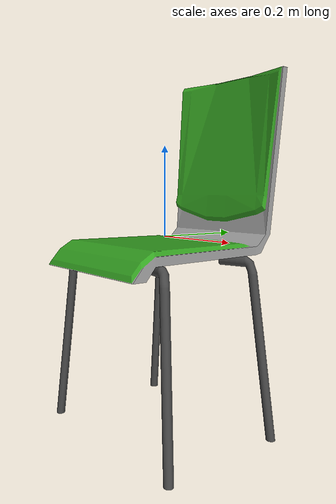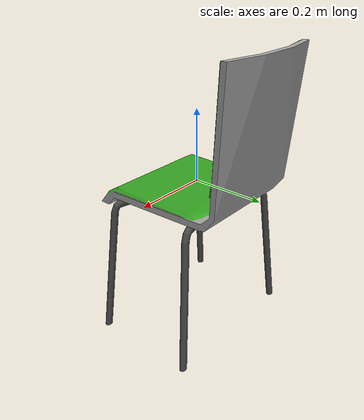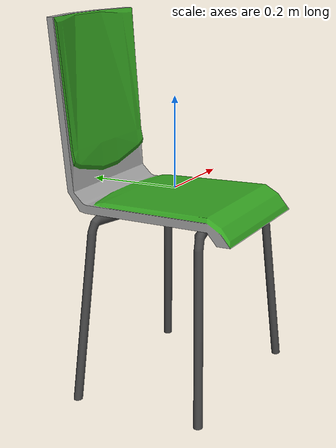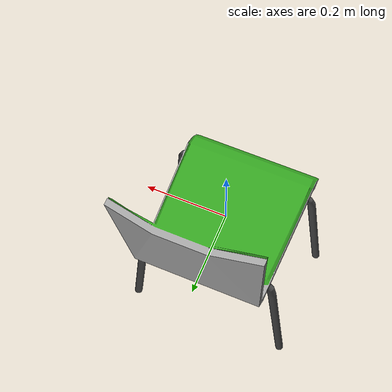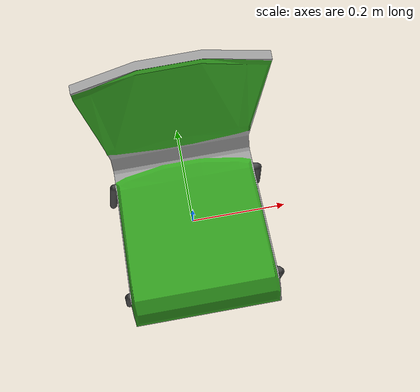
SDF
<?xml version='1.0'?>
<sdf version='1.5'>
    <model name="classroom_chair">
        <pose>0 0 0 0 0 0</pose>
        <static>false</static>
        <link name='model_body'>
            <visual name="visual">
                <geometry>
                    <mesh>
                        <uri>model://robert_gazebo/meshes/classroom_chair_green_visual.dae</uri>
                        <scale>100 100 100</scale>
                    </mesh>
                </geometry>
            </visual>

            <collision name="collision">
                <geometry>
                    <mesh>
                        <uri>model://robert_gazebo/meshes/classroom_chair_collision.dae</uri>
                        <scale>1 1 1</scale>
                    </mesh>
                </geometry>
            </collision>

            <inertial>
                <pose> 0 0 0 0 0 0</pose>
                <inertia>
                    <ixx>0.34</ixx>
                    <ixy>0</ixy>
                    <ixz>0</ixz>
                    <iyy>0.34</iyy>
                    <iyz>0</iyz>
                    <izz>0.18</izz>
                </inertia>
                <mass>5.0</mass>
            </inertial>
        </link>
    </model>
</sdf>
